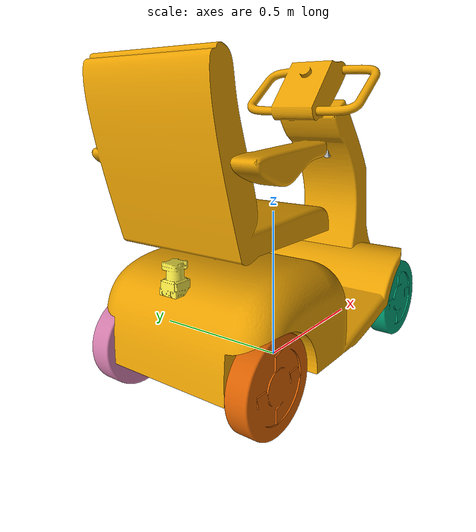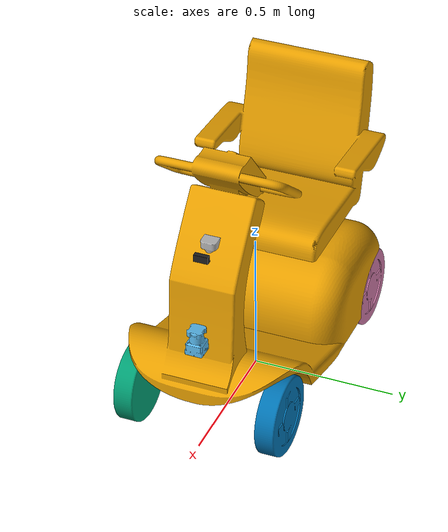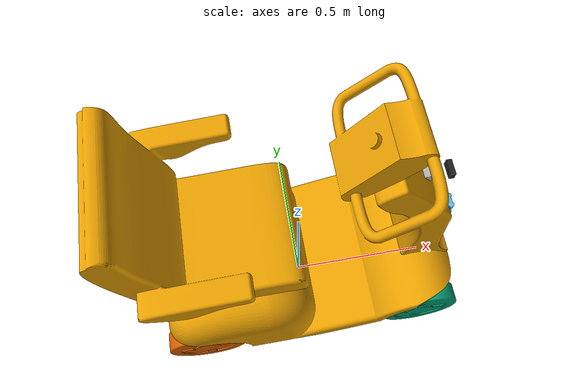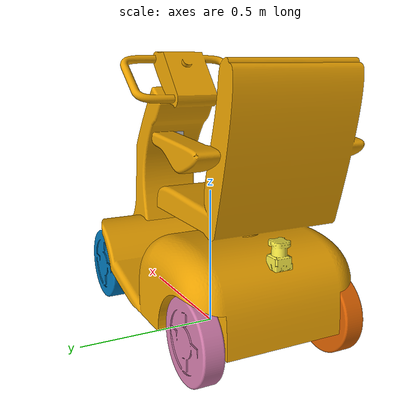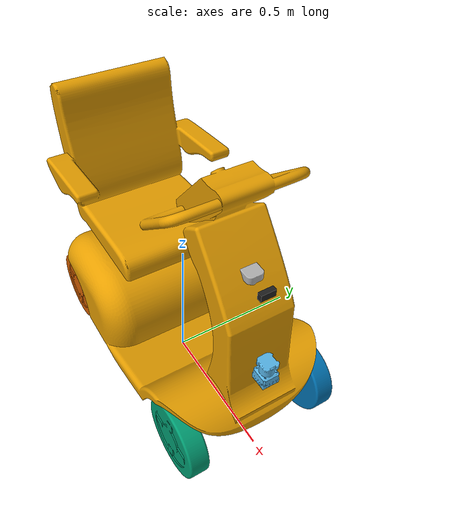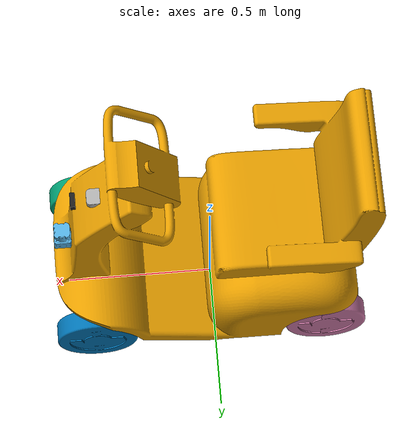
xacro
<?xml version="1.0"?>
<robot name="origins" xmlns:xacro="http://www.ros.org/wiki/xacro">
    <xacro:property name="camera_link" value="0.05" /> <!-- Size of square 'camera' box -->
    <!-- Import all Gazebo-customization elements, including Gazebo colors -->
    <xacro:include filename="$(find third_robot_description)/urdf/third_robot.gazebo" />
    <!-- Import Rviz colors -->
    <xacro:include filename="$(find third_robot_description)/urdf/materials.xacro" />
    <!-- Import macros -->
    <xacro:include filename="$(find third_robot_description)/urdf/third_robot_macro.xacro" />

    <link name="base_link">
      <visual>
        <origin rpy="0 0 0" xyz="0 0 0.55" />
        <geometry>
          <mesh filename="package://third_robot_description/meshes/third_robot/third_robot_body.dae"/>
        </geometry>
      </visual>
      <collision>
        <origin rpy="0 0 0" xyz="0 0 0.35" />
        <geometry>
          <box size="1.0 0.55 0.4"/>
        </geometry>
      </collision>
      <xacro:default_inertial mass="10"/>
    </link>

    <!-- wheels -->
    <xacro:front_wheel right_left="right" reflect_right_left="1"/>
    <xacro:front_wheel right_left="left" reflect_right_left="-1"/>
    <xacro:wheel right_left="right" reflect_right_left="1" front_rear="rear" reflect_front_rear="-1"/>
    <xacro:wheel right_left="left" reflect_right_left="-1" front_rear="rear" reflect_front_rear="-1"/>

    <!-- lrf -->

    <!-- lrf -->
    <link name="front_top_3durg">
      <visual>
        <origin rpy="0 0 0" xyz="-0.10 0 0"/>
        <geometry>
          <mesh filename="package://third_robot_description/meshes/3DURG/hokuyo3durg.dae"/>
        </geometry>
      </visual>
    </link>

    <joint name="base_to_front_top_3durg" type="fixed">
      <axis xyz="0 1 0"/>
      <parent link="base_link"/>
      <child link="front_top_3durg"/>
      <origin rpy="${PI} 0 0" xyz="0.40 0 0.75"/>
    </joint>

    <link name="front_top_3durg_rgbd_optical_frame"/>

    <joint name="front_top_3durg_to_rgbd_optical_frame" type="fixed">
      <axis xyz="0 1 0"/>
      <parent link="front_top_3durg"/>
      <child link="front_top_3durg_rgbd_optical_frame"/>
      <origin rpy="${PI/2} ${PI} ${PI/2}"/>
    </joint>

    <!-- front_bottom_lrf -->
    <link name="front_bottom_lrf">
      <visual>
        <origin rpy="0 0 0" xyz="0 0 0"/>
        <geometry>
          <mesh filename="package://third_robot_description/meshes/LRF/UTM-30LX.dae"/>
        </geometry>
      </visual>
    </link>

    <joint name="base_to_front_bottom_lrf" type="fixed">
        <axis xyz="0 1 0"/>
        <parent link="base_link"/>
        <child link="front_bottom_lrf"/>
        <origin xyz="0.50 0 0.39"/>
    </joint>

    <!-- steer -->
    <link name="steer"/>

    <joint name="base_to_steer" type="fixed">
        <axis xyz="0 1 0"/>
        <parent link="base_link"/>
        <child link="steer"/>
        <origin xyz="0.41 0 0.14"/>
    </joint>

    <!-- steer_left -->

    <!-- rear_bottom_lrf -->
    <link name="rear_bottom_lrf">
      <visual>
        <origin rpy="0 0 ${PI}" xyz="0 0 0"/>
        <geometry>
          <mesh filename="package://third_robot_description/meshes/LRF/UTM-30LX.dae"/>
        </geometry>
      </visual>
    </link>

    <joint name="base_to_rear_bottom_lrf" type="fixed">
      <axis xyz="0 1 0"/>
      <parent link="base_link"/>
      <child link="rear_bottom_lrf"/>
      <origin  rpy="0 0 ${PI}" xyz="-0.45 0 0.35"/>
    </joint>

    <!-- Camera -->
    <link name="camera_link">
      <collision>
        <origin xyz="0 0 0" rpy="0 0 0"/>
        <geometry>
          <box size="${camera_link/3} ${camera_link} ${camera_link/2}"/>
        </geometry>
      </collision>

      <visual>
        <origin xyz="0 0 0" rpy="0 0 0"/>
        <geometry>
          <box size="${camera_link/3} ${camera_link} ${camera_link/2}"/>
        </geometry>
        <material name="black"/>
      </visual>

      <inertial>
        <mass value="1e-5" />
        <origin xyz="0 0 0" rpy="0 0 0"/>
        <inertia ixx="1e-6" ixy="0" ixz="0" iyy="1e-6" iyz="0" izz="1e-6" />
      </inertial>
    </link>

    <joint name="base_to_camera" type="fixed">
      <axis xyz="0 1 0" />
      <parent link="base_link"/>
      <child link="camera_link"/>
      <origin rpy="0 0 0" xyz="0.45 0 0.72"/>
    </joint>

    <joint name="base_to_merged_lrf" type="fixed">
      <axis xyz="0 1 0"/>
      <parent link="base_link" />
      <child link="merged_lrf" />
      <origin rpy="0 0 0" xyz="0 0 0.39"/>
    </joint>

    <link name="merged_lrf">
    </link>

    <transmission name="tran1">
      <type>transmission_interface/SimpleTransmission</type>
        <joint name="base_to_left_rear_wheel">
          <hardwareInterface>EffortJointInterface</hardwareInterface>
        </joint>
        <actuator name="motor1">
          <hardwareInterface>EffortJointInterface</hardwareInterface>
          <mechanicalReduction>1</mechanicalReduction>
        </actuator>
    </transmission>

    <transmission name="tran2">
      <type>transmission_interface/SimpleTransmission</type>
      <joint name="base_to_right_rear_wheel">
        <hardwareInterface>EffortJointInterface</hardwareInterface>
      </joint>
      <actuator name="motor2">
        <hardwareInterface>EffortJointInterface</hardwareInterface>
        <mechanicalReduction>1</mechanicalReduction>
      </actuator>
    </transmission>

</robot>

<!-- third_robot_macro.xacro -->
<robot name="origins" xmlns:xacro="http://www.ros.org/wiki/xacro">
    <!-- Constants for math -->
    <xacro:property name="PI" value="3.1415926535897931" />
    <!-- Constants for robot dimensions -->
    <xacro:property name="length_wheel" value="0.07" />
    <xacro:property name="radius_wheel" value="0.14" />
    <xacro:property name="base_center_x" value="0.015" />
    <xacro:property name="length_from_base_center_to_wheel_x" value="0.395" />
    <xacro:property name="length_from_base_to_wheel_front_x" value="0.41" />
    <xacro:property name="length_from_base_to_wheel_rear_x" value="0.38" />
    <xacro:property name="length_from_base_to_wheel_y" value="0.25" />
    <xacro:macro name="default_inertial" params="mass">
        <inertial>
            <mass value="${mass}" />
            <inertia ixx="1.0" ixy="0.0" ixz="0.0"
                iyy="1.0" iyz="0.0"
                izz="1.0" />
        </inertial>
    </xacro:macro>

    <!-- wheel macro -->
    <xacro:macro name="wheel" params="right_left reflect_right_left front_rear reflect_front_rear">
        <link name="${right_left}_${front_rear}_wheel">
            <visual>
                <!-- when reflect_right_left = 1 to be 0 reflect_right_left= -1 to be PI -->
                <origin rpy="${PI/2-reflect_right_left*PI/2} 0 0" xyz="0 0 0"/>
                <geometry>
                    <mesh filename="package://third_robot_description/meshes/third_robot/third_robot_wheel.dae"/>
                </geometry>
                ->
            </visual>
            <collision>
                <origin rpy="${PI/2} 0 0" xyz="0 0 0"/>
                <geometry>
                    <cylinder length="${length_wheel}" radius="${radius_wheel}"/>
                </geometry>
            </collision>
            <xacro:default_inertial mass="1"/>
        </link>
        <joint name="base_to_${right_left}_${front_rear}_wheel" type="continuous">
            <axis xyz="0 1 0"/>
            <parent link="base_link"/>
            <child link="${right_left}_${front_rear}_wheel"/>
            <origin xyz="${base_center_x+reflect_front_rear*length_from_base_center_to_wheel_x} ${-reflect_right_left*length_from_base_to_wheel_y} ${radius_wheel}"/>
        </joint>

        <transmission name="tran_${right_left}_${front_rear}">
            <type>transmission_interface/SimpleTransmission</type>
            <joint name="base_to_${right_left}_${front_rear}_wheel">
                <hardwareInterface>VelocityJointInterface</hardwareInterface>
            </joint>
            <actuator name="${right_left}_${front_rear}">
                <hardwareInterface>VelocityJointInterface</hardwareInterface>
                <mechanicalReduction>1</mechanicalReduction>
            </actuator>
        </transmission>
    </xacro:macro>

    <!-- front wheel macro -->
    <xacro:macro name="front_wheel" params="right_left reflect_right_left">
        <!-- steer_right -->
        <link name="steer_${right_left}">
            <inertial>
                <mass value="1.0" />
                <inertia ixx="1.0" ixy="0.0" ixz="0.0"
                    iyy="1.0" iyz="0.0"
                    izz="1.0" />
            </inertial>
        </link>

        <joint name="base_to_${right_left}_front_steer" type="continuous">
            <axis xyz="0 0 1"/>
            <parent link="base_link"/>
            <child link="steer_${right_left}"/>
        <origin xyz="${base_center_x+length_from_base_center_to_wheel_x} ${-reflect_right_left*length_from_base_to_wheel_y} 0.30"/>
        </joint>

        <link name="${right_left}_front_wheel">
            <visual>
                <!-- when reflect_right_left = 1 to be 0 reflect_right_left= -1 to be PI -->
                <origin rpy="${PI/2-reflect_right_left*PI/2} 0 0" xyz="0 0 0"/>
                <geometry>
                    <mesh filename="package://third_robot_description/meshes/third_robot/third_robot_wheel.dae"/>
                </geometry>
                ->
            </visual>
            <collision>
                <origin rpy="${PI/2} 0 0" xyz="0 0 0"/>
                <geometry>
                    <cylinder length="${length_wheel}" radius="${radius_wheel}"/>
                </geometry>
            </collision>
            <xacro:default_inertial mass="1"/>
        </link>
        <joint name="base_to_${right_left}_front_wheel" type="continuous">
            <axis xyz="0 1 0"/>
            <parent link="steer_${right_left}"/>
            <child link="${right_left}_front_wheel"/>
            <origin xyz="0 0 -0.16"/>
        </joint>

        <transmission name="tran_${right_left}_front">
            <type>transmission_interface/SimpleTransmission</type>
            <joint name="base_to_${right_left}_front_wheel">
                <hardwareInterface>VelocityJointInterface</hardwareInterface>
            </joint>
            <actuator name="${right_left}_front">
                <hardwareInterface>VelocityJointInterface</hardwareInterface>
                <mechanicalReduction>1</mechanicalReduction>
            </actuator>
        </transmission>
    </xacro:macro>

</robot>
